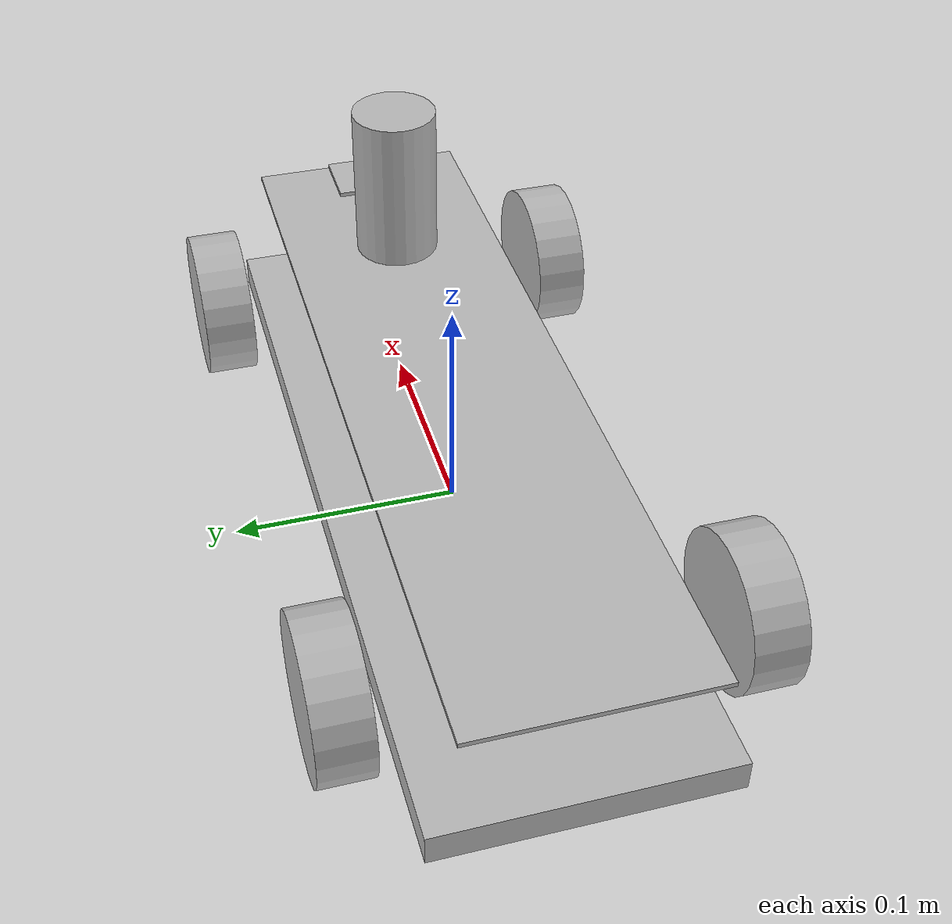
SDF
<sdf version='1.7'>
  <model name='f1tenth_car'>
    <link name='base_footprint'>
      <inertial>
        <pose>0.006338 0 0.038124 0 -0 0</pose>
        <mass>2.13</mass>
        <inertia>
          <ixx>0.00403909</ixx>
          <ixy>0</ixy>
          <ixz>-0.00075082</ixz>
          <iyy>0.027166</iyy>
          <iyz>0</iyz>
          <izz>0.0286469</izz>
        </inertia>
      </inertial>
      <collision name='base_footprint_fixed_joint_lump__base_link_collision'>
        <pose>0 0 0.0375 0 -0 0</pose>
        <geometry>
          <box>
            <size>0.38 0.125 0.069</size>
          </box>
        </geometry>
      </collision>
      <collision name='base_footprint_fixed_joint_lump__laser_link_collision_1'>
        <pose>0.1 0 0.108 0 -0 0</pose>
        <geometry>
          <cylinder>
            <length>0.07</length>
            <radius>0.019</radius>
          </cylinder>
        </geometry>
        <surface>
          <contact>
            <ode/>
          </contact>
          <friction>
            <ode/>
          </friction>
        </surface>
      </collision>
      <visual name='base_footprint_fixed_joint_lump__base_link_visual'>
        <pose>0 0 0.01 0 -0 0</pose>
        <geometry>
          <box>
            <size>0.38 0.125 0.014</size>
          </box>
        </geometry>
      </visual>
      <visual name='base_footprint_fixed_joint_lump__base_link_visual_1'>
        <pose>0 0 0.065 0 -0 0</pose>
        <geometry>
          <box>
            <size>0.38 0.101 0.002</size>
          </box>
        </geometry>
      </visual>
      <visual name='base_footprint_fixed_joint_lump__front_camera_link_visual_2'>
        <pose>0.175 0 0.053 0 -0 0</pose>
        <geometry>
          <box>
            <size>0.03 0.03 0.03</size>
          </box>
        </geometry>
      </visual>
      <visual name='base_footprint_fixed_joint_lump__laser_link_visual_3'>
        <pose>0.1 0 0.108 0 -0 0</pose>
        <geometry>
          <cylinder>
            <length>0.07</length>
            <radius>0.019</radius>
          </cylinder>
        </geometry>
      </visual>
      <sensor name='rgb_camera' type='camera'>
        <always_on>1</always_on>
        <update_rate>30</update_rate>
        <camera>
          <horizontal_fov>1.047</horizontal_fov>
          <image>
            <width>640</width>
            <height>480</height>
            <format>R8G8B8</format>
          </image>
          <clip>
            <near>0.02</near>
            <far>50</far>
          </clip>
        </camera>
        <plugin name='rgb_camera_plugin' filename='libgazebo_ros_camera.so'>
          <ros>
            <remapping>~/image_raw:=/camera/rgb/image_raw</remapping>
            <remapping>~/camera_info:=/camera/rgb/camera_info</remapping>
          </ros>
          <frame_name>front_camera_link</frame_name>
        </plugin>
        <pose>0.175 0 0.053 0 -0 0</pose>
      </sensor>
      <sensor name='depth_camera' type='depth'>
        <always_on>1</always_on>
        <update_rate>30</update_rate>
        <camera>
          <horizontal_fov>1.047</horizontal_fov>
          <image>
            <width>640</width>
            <height>480</height>
            <format>FLOAT32</format>
          </image>
          <clip>
            <near>0.05</near>
            <far>20</far>
          </clip>
        </camera>
        <plugin name='depth_camera_plugin' filename='libgazebo_ros_depth_camera.so'>
          <ros>
            <remapping>~/image_raw:=/camera/depth/image_raw</remapping>
            <remapping>~/camera_info:=/camera/depth/camera_info</remapping>
          </ros>
          <frame_name>front_camera_link</frame_name>
        </plugin>
        <pose>0.175 0 0.053 0 -0 0</pose>
      </sensor>
      <sensor name='imu_sensor' type='imu'>
        <always_on>1</always_on>
        <update_rate>100</update_rate>
        <visualize>0</visualize>
        <plugin name='imu_plugin' filename='libgazebo_ros_imu_sensor.so'>
          <ros>
            <remapping>~/out:=/imu/data</remapping>
          </ros>
          <frame_name>imu_link</frame_name>
        </plugin>
        <imu>
          <angular_velocity>
            <x>
              <noise type='gaussian'>
                <mean>0</mean>
                <stddev>0.001</stddev>
                <bias_mean>0</bias_mean>
                <bias_stddev>0.0002</bias_stddev>
              </noise>
            </x>
            <y>
              <noise type='gaussian'>
                <mean>0</mean>
                <stddev>0.001</stddev>
                <bias_mean>0</bias_mean>
                <bias_stddev>0.0002</bias_stddev>
              </noise>
            </y>
            <z>
              <noise type='gaussian'>
                <mean>0</mean>
                <stddev>0.001</stddev>
                <bias_mean>0</bias_mean>
                <bias_stddev>0.0002</bias_stddev>
              </noise>
            </z>
          </angular_velocity>
          <linear_acceleration>
            <x>
              <noise type='gaussian'>
                <mean>0</mean>
                <stddev>0.1</stddev>
                <bias_mean>0</bias_mean>
                <bias_stddev>0.02</bias_stddev>
              </noise>
            </x>
            <y>
              <noise type='gaussian'>
                <mean>0</mean>
                <stddev>0.1</stddev>
                <bias_mean>0</bias_mean>
                <bias_stddev>0.02</bias_stddev>
              </noise>
            </y>
            <z>
              <noise type='gaussian'>
                <mean>0</mean>
                <stddev>0.1</stddev>
                <bias_mean>0</bias_mean>
                <bias_stddev>0.02</bias_stddev>
              </noise>
            </z>
          </linear_acceleration>
        </imu>
        <pose>0 0 0.0345 0 -0 0</pose>
      </sensor>
      <sensor name='lidar_sensor' type='ray'>
        <always_on>1</always_on>
        <update_rate>20</update_rate>
        <visualize>0</visualize>
        <ray>
          <scan>
            <horizontal>
              <samples>720</samples>
              <resolution>1</resolution>
              <min_angle>-3.14159</min_angle>
              <max_angle>3.14159</max_angle>
            </horizontal>
          </scan>
          <range>
            <min>0.05</min>
            <max>30</max>
            <resolution>0.01</resolution>
          </range>
          <noise>
            <type>gaussian</type>
            <mean>0</mean>
            <stddev>0.01</stddev>
          </noise>
        </ray>
        <plugin name='gazebo_ros_laser' filename='libgazebo_ros_ray_sensor.so'>
          <ros>
            <remapping>~/out:=/scan</remapping>
          </ros>
          <output_type>sensor_msgs/LaserScan</output_type>
          <frame_name>laser_link</frame_name>
        </plugin>
        <pose>0.1 0 0.073 0 -0 0</pose>
      </sensor>
    </link>
    <joint name='joint_steer_front_left' type='revolute'>
      <pose relative_to='base_footprint'>0.13 0.0835 0.034 0 -0 0</pose>
      <parent>base_footprint</parent>
      <child>steer_front_left_link</child>
      <axis>
        <xyz>0 0 1</xyz>
        <limit>
          <lower>-0.7</lower>
          <upper>0.7</upper>
          <effort>5</effort>
          <velocity>2</velocity>
        </limit>
        <dynamics>
          <spring_reference>0</spring_reference>
          <spring_stiffness>0</spring_stiffness>
        </dynamics>
      </axis>
    </joint>
    <link name='steer_front_left_link'>
      <pose relative_to='joint_steer_front_left'>0 0 0 0 -0 0</pose>
      <inertial>
        <pose>0 0 0 0 -0 0</pose>
        <mass>0.02</mass>
        <inertia>
          <ixx>0.0001</ixx>
          <ixy>0</ixy>
          <ixz>0</ixz>
          <iyy>0.0001</iyy>
          <iyz>0</iyz>
          <izz>0.0001</izz>
        </inertia>
      </inertial>
    </link>
    <joint name='joint_wheel_front_left' type='revolute'>
      <pose relative_to='steer_front_left_link'>0 0 0 0 -0 0</pose>
      <parent>steer_front_left_link</parent>
      <child>wheel_front_left</child>
      <axis>
        <xyz>0 1 0</xyz>
        <limit>
          <lower>-1e+16</lower>
          <upper>1e+16</upper>
        </limit>
        <dynamics>
          <spring_reference>0</spring_reference>
          <spring_stiffness>0</spring_stiffness>
        </dynamics>
      </axis>
    </joint>
    <link name='wheel_front_left'>
      <pose relative_to='joint_wheel_front_left'>0 0 0 0 -0 0</pose>
      <inertial>
        <pose>0 0 0 0 -0 0</pose>
        <mass>0.05</mass>
        <inertia>
          <ixx>0.0001</ixx>
          <ixy>0</ixy>
          <ixz>0</ixz>
          <iyy>0.0001</iyy>
          <iyz>0</iyz>
          <izz>0.0001</izz>
        </inertia>
      </inertial>
      <collision name='wheel_front_left_collision'>
        <pose>0 0 0 1.5708 -0 0</pose>
        <geometry>
          <cylinder>
            <length>0.023</length>
            <radius>0.034</radius>
          </cylinder>
        </geometry>
        <surface>
          <contact>
            <ode>
              <kp>1e+06</kp>
              <kd>10</kd>
              <min_depth>0.001</min_depth>
            </ode>
          </contact>
          <friction>
            <ode>
              <mu>1.5</mu>
              <mu2>1.5</mu2>
            </ode>
          </friction>
        </surface>
      </collision>
      <visual name='wheel_front_left_visual'>
        <pose>0 0 0 1.5708 -0 0</pose>
        <geometry>
          <cylinder>
            <length>0.023</length>
            <radius>0.034</radius>
          </cylinder>
        </geometry>
      </visual>
    </link>
    <joint name='joint_steer_front_right' type='revolute'>
      <pose relative_to='base_footprint'>0.13 -0.0835 0.034 0 -0 0</pose>
      <parent>base_footprint</parent>
      <child>steer_front_right_link</child>
      <axis>
        <xyz>0 0 1</xyz>
        <limit>
          <lower>-0.7</lower>
          <upper>0.7</upper>
          <effort>5</effort>
          <velocity>2</velocity>
        </limit>
        <dynamics>
          <spring_reference>0</spring_reference>
          <spring_stiffness>0</spring_stiffness>
        </dynamics>
      </axis>
    </joint>
    <link name='steer_front_right_link'>
      <pose relative_to='joint_steer_front_right'>0 0 0 0 -0 0</pose>
      <inertial>
        <pose>0 0 0 0 -0 0</pose>
        <mass>0.02</mass>
        <inertia>
          <ixx>0.0001</ixx>
          <ixy>0</ixy>
          <ixz>0</ixz>
          <iyy>0.0001</iyy>
          <iyz>0</iyz>
          <izz>0.0001</izz>
        </inertia>
      </inertial>
    </link>
    <joint name='joint_wheel_front_right' type='revolute'>
      <pose relative_to='steer_front_right_link'>0 0 0 0 -0 0</pose>
      <parent>steer_front_right_link</parent>
      <child>wheel_front_right</child>
      <axis>
        <xyz>0 1 0</xyz>
        <limit>
          <lower>-1e+16</lower>
          <upper>1e+16</upper>
        </limit>
        <dynamics>
          <spring_reference>0</spring_reference>
          <spring_stiffness>0</spring_stiffness>
        </dynamics>
      </axis>
    </joint>
    <link name='wheel_front_right'>
      <pose relative_to='joint_wheel_front_right'>0 0 0 0 -0 0</pose>
      <inertial>
        <pose>0 0 0 0 -0 0</pose>
        <mass>0.05</mass>
        <inertia>
          <ixx>0.0001</ixx>
          <ixy>0</ixy>
          <ixz>0</ixz>
          <iyy>0.0001</iyy>
          <iyz>0</iyz>
          <izz>0.0001</izz>
        </inertia>
      </inertial>
      <collision name='wheel_front_right_collision'>
        <pose>0 0 0 1.5708 -0 0</pose>
        <geometry>
          <cylinder>
            <length>0.023</length>
            <radius>0.034</radius>
          </cylinder>
        </geometry>
        <surface>
          <contact>
            <ode>
              <kp>1e+06</kp>
              <kd>10</kd>
              <min_depth>0.001</min_depth>
            </ode>
          </contact>
          <friction>
            <ode>
              <mu>1.5</mu>
              <mu2>1.5</mu2>
            </ode>
          </friction>
        </surface>
      </collision>
      <visual name='wheel_front_right_visual'>
        <pose>0 0 0 1.5708 -0 0</pose>
        <geometry>
          <cylinder>
            <length>0.023</length>
            <radius>0.034</radius>
          </cylinder>
        </geometry>
      </visual>
    </link>
    <joint name='joint_wheel_rear_left' type='revolute'>
      <pose relative_to='base_footprint'>-0.13 0.0835 0.034 0 -0 0</pose>
      <parent>base_footprint</parent>
      <child>wheel_rear_left</child>
      <axis>
        <xyz>0 1 0</xyz>
        <limit>
          <lower>-1e+16</lower>
          <upper>1e+16</upper>
        </limit>
        <dynamics>
          <spring_reference>0</spring_reference>
          <spring_stiffness>0</spring_stiffness>
        </dynamics>
      </axis>
    </joint>
    <link name='wheel_rear_left'>
      <pose relative_to='joint_wheel_rear_left'>0 0 0 0 -0 0</pose>
      <inertial>
        <pose>0 0 0 0 -0 0</pose>
        <mass>0.05</mass>
        <inertia>
          <ixx>0.0001</ixx>
          <ixy>0</ixy>
          <ixz>0</ixz>
          <iyy>0.0001</iyy>
          <iyz>0</iyz>
          <izz>0.0001</izz>
        </inertia>
      </inertial>
      <collision name='wheel_rear_left_collision'>
        <pose>0 0 0 1.5708 -0 0</pose>
        <geometry>
          <cylinder>
            <length>0.023</length>
            <radius>0.034</radius>
          </cylinder>
        </geometry>
        <surface>
          <contact>
            <ode>
              <kp>1e+06</kp>
              <kd>10</kd>
              <min_depth>0.001</min_depth>
            </ode>
          </contact>
          <friction>
            <ode>
              <mu>1.5</mu>
              <mu2>1.5</mu2>
            </ode>
          </friction>
        </surface>
      </collision>
      <visual name='wheel_rear_left_visual'>
        <pose>0 0 0 1.5708 -0 0</pose>
        <geometry>
          <cylinder>
            <length>0.023</length>
            <radius>0.034</radius>
          </cylinder>
        </geometry>
      </visual>
    </link>
    <joint name='joint_wheel_rear_right' type='revolute'>
      <pose relative_to='base_footprint'>-0.13 -0.0835 0.034 0 -0 0</pose>
      <parent>base_footprint</parent>
      <child>wheel_rear_right</child>
      <axis>
        <xyz>0 1 0</xyz>
        <limit>
          <lower>-1e+16</lower>
          <upper>1e+16</upper>
        </limit>
        <dynamics>
          <spring_reference>0</spring_reference>
          <spring_stiffness>0</spring_stiffness>
        </dynamics>
      </axis>
    </joint>
    <link name='wheel_rear_right'>
      <pose relative_to='joint_wheel_rear_right'>0 0 0 0 -0 0</pose>
      <inertial>
        <pose>0 0 0 0 -0 0</pose>
        <mass>0.05</mass>
        <inertia>
          <ixx>0.0001</ixx>
          <ixy>0</ixy>
          <ixz>0</ixz>
          <iyy>0.0001</iyy>
          <iyz>0</iyz>
          <izz>0.0001</izz>
        </inertia>
      </inertial>
      <collision name='wheel_rear_right_collision'>
        <pose>0 0 0 1.5708 -0 0</pose>
        <geometry>
          <cylinder>
            <length>0.023</length>
            <radius>0.034</radius>
          </cylinder>
        </geometry>
        <surface>
          <contact>
            <ode>
              <kp>1e+06</kp>
              <kd>10</kd>
              <min_depth>0.001</min_depth>
            </ode>
          </contact>
          <friction>
            <ode>
              <mu>1.5</mu>
              <mu2>1.5</mu2>
            </ode>
          </friction>
        </surface>
      </collision>
      <visual name='wheel_rear_right_visual'>
        <pose>0 0 0 1.5708 -0 0</pose>
        <geometry>
          <cylinder>
            <length>0.023</length>
            <radius>0.034</radius>
          </cylinder>
        </geometry>
      </visual>
    </link>
    <plugin name='f1tenth_ackermann' filename='libgazebo_ros_ackermann_drive.so'>
      <ros>
        <remapping>cmd_vel:=/cmd_vel</remapping>
        <remapping>odom:=/odom</remapping>
      </ros>
      <update_rate>100.0</update_rate>
      <front_left_joint>joint_wheel_front_left</front_left_joint>
      <front_right_joint>joint_wheel_front_right</front_right_joint>
      <rear_left_joint>joint_wheel_rear_left</rear_left_joint>
      <rear_right_joint>joint_wheel_rear_right</rear_right_joint>
      <left_steering_joint>joint_steer_front_left</left_steering_joint>
      <right_steering_joint>joint_steer_front_right</right_steering_joint>
      <max_steer>2.0</max_steer>
      <max_speed>20.0</max_speed>
      <publish_odom>1</publish_odom>
      <publish_odom_tf>1</publish_odom_tf>
      <odometry_frame>odom</odometry_frame>
      <robot_base_frame>base_footprint</robot_base_frame>
    </plugin>
    <static>0</static>
    <plugin name='f1tenth_interface' filename='libf1tenth_interface_plugin.so'>
      <steer_fl_joint>joint_steer_front_left</steer_fl_joint>
      <steer_fr_joint>joint_steer_front_right</steer_fr_joint>
      <wheel_rl_joint>joint_wheel_rear_left</wheel_rl_joint>
      <wheel_rr_joint>joint_wheel_rear_right</wheel_rr_joint>
      <steer_topic>/autodrive/f1tenth_1/steering_command</steer_topic>
      <throttle_topic>/autodrive/f1tenth_1/throttle_command</throttle_topic>
      <brake_topic>/autodrive/f1tenth_1/brake_command</brake_topic>
      <k_speed>2.0</k_speed>
      <wheel_radius>0.034</wheel_radius>
      <steer_limit_rad>0.698</steer_limit_rad>
      <wheel_fmax_nm>8.0</wheel_fmax_nm>
      <steer_fmax_nm>2.0</steer_fmax_nm>
    </plugin>
  </model>
</sdf>
